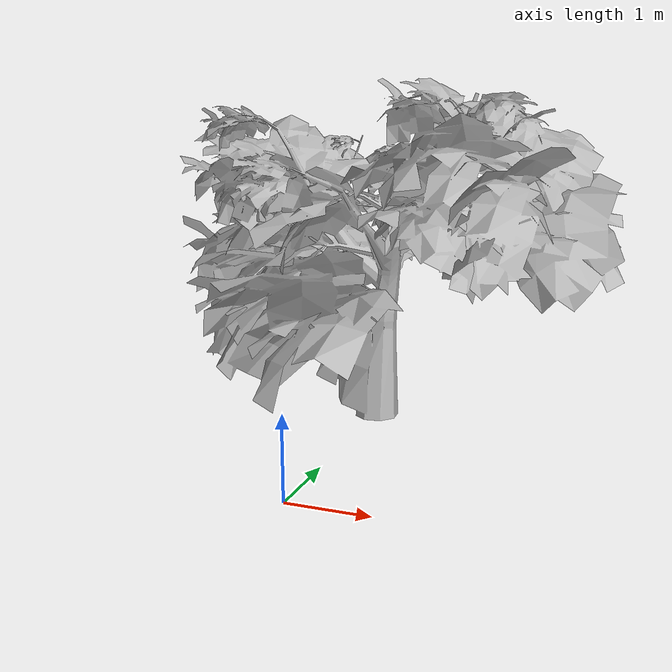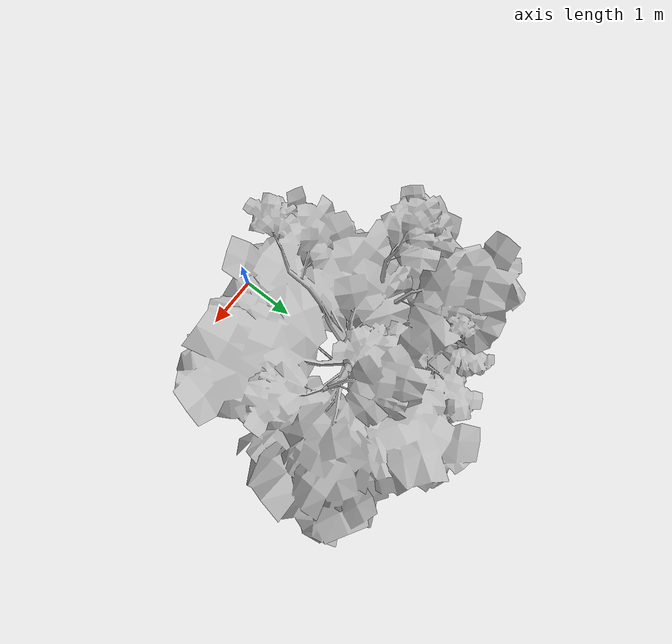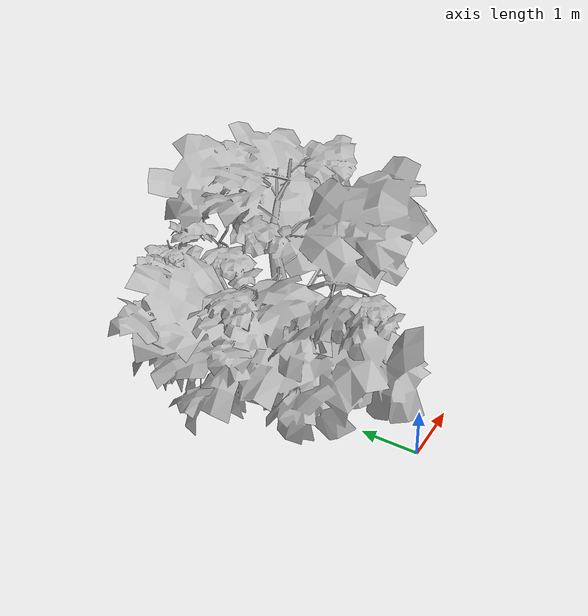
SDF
<?xml version="1.0" ?>
<sdf version="1.5">
  <model name="Maple Tree">
    <static>true</static>
    <link name="link">
      <collision name="collision">
        <geometry>
          <mesh>
            <uri>model://tree_maple/meshes/tree_maple.dae</uri>
          </mesh>
        </geometry>
        <surface>
          <contact>
            <ode>
              <max_vel>0.1</max_vel>
              <min_depth>0.001</min_depth>
            </ode>
          </contact>
        </surface>
      </collision>
      <visual name="visual">
        <geometry>
          <mesh>
            <uri>model://tree_maple/meshes/tree_maple.dae</uri>
          </mesh>
        </geometry>
      </visual>
    </link>
  </model>
</sdf>

<!-- vim: set et fenc=utf-8 ff=unix sts=0 sw=2 ts=2 : -->
